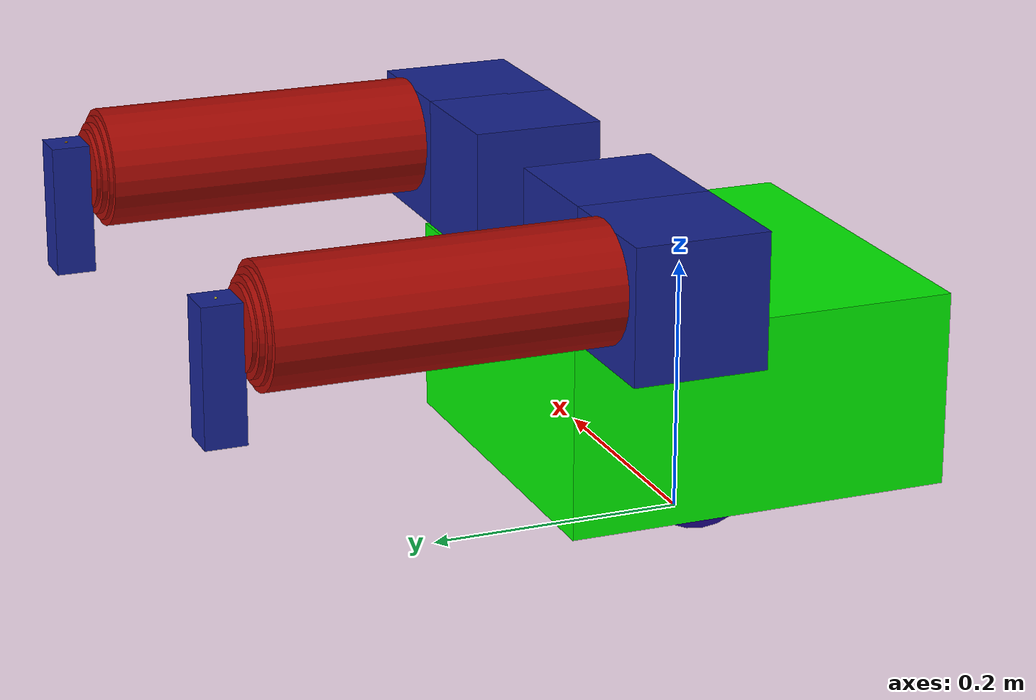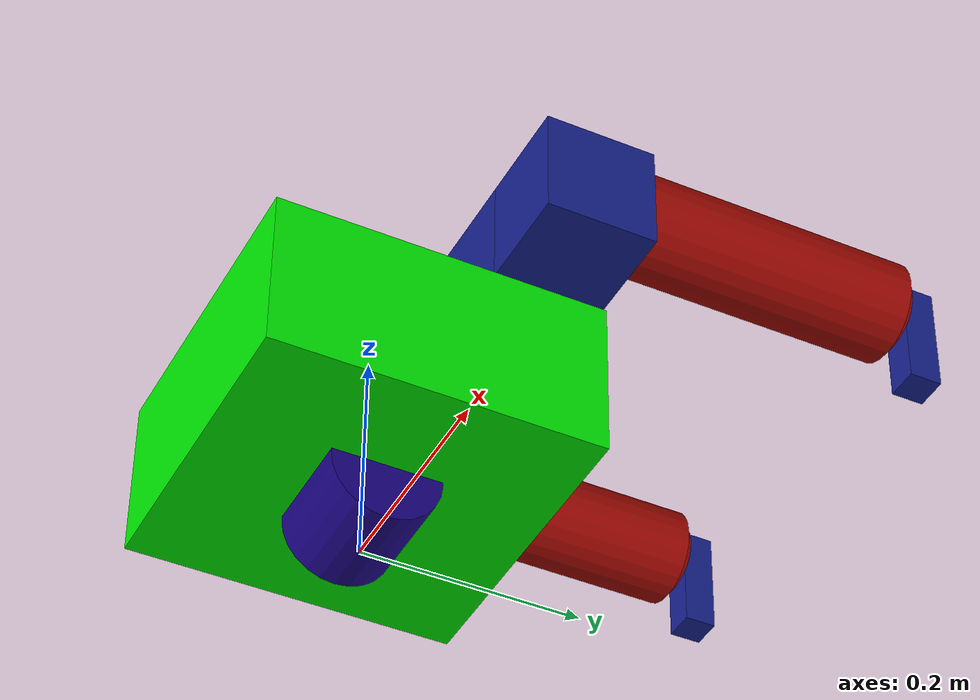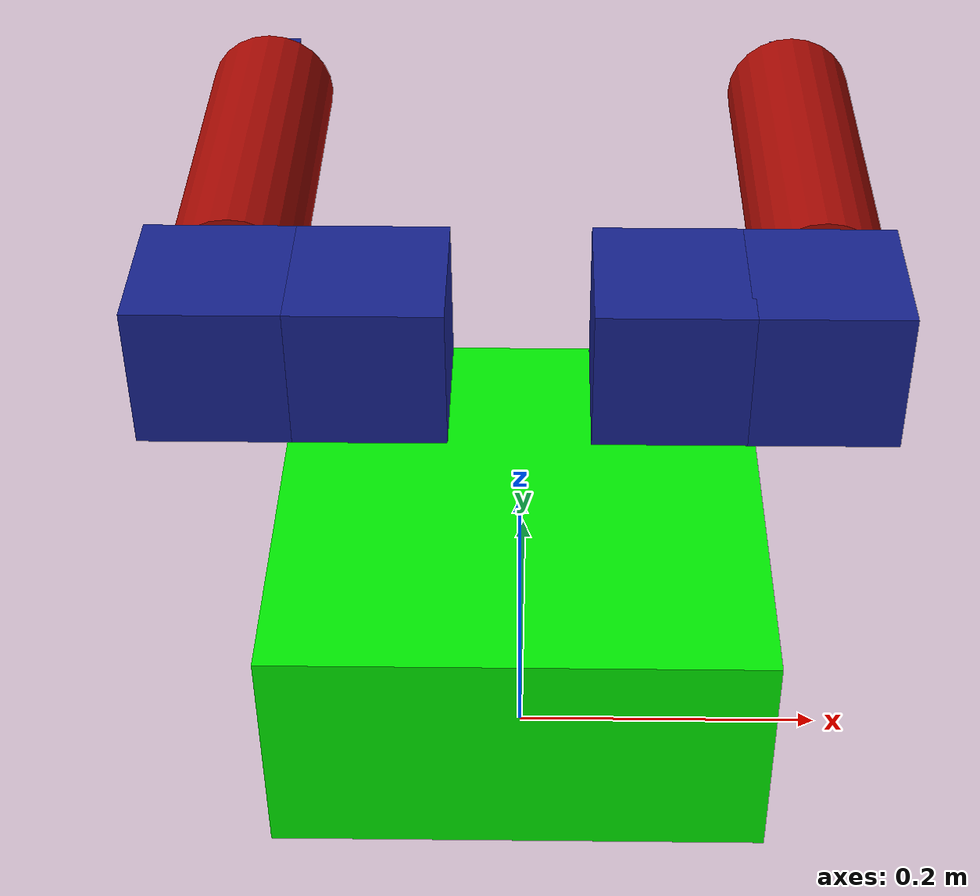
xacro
<?xml version="1.0"?>
<robot xmlns:xacro="http://www.ros.org/wiki/xacro" name="robot">
    <xacro:arg name="initial_positions_file" default="initial_positions.yaml" />

    <!-- Import robot urdf file -->
    <xacro:include filename="$(find robot_description)/urdf/newrobot.urdf" />

    <!-- Import control_xacro -->
    <xacro:include filename="robot.ros2_control.xacro" />

    <xacro:robot_ros2_control name="FakeSystem" initial_positions_file="$(arg initial_positions_file)"/>

</robot>

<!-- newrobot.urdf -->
<robot name="robot">
  <link name="base_link">
    <visual>
      <origin xyz="0 0 0.1291011279735872" rpy="0 0 0" />
      <geometry>
        <box size="0.3 0.3 0.15" />
      </geometry>
      <material name="base_link-material">
        <color rgba="0.006048833020386069 0.9473065367320066 0.0069954101845983935 1" />
      </material>
    </visual>
    <collision>
      <origin xyz="0 0 0.1291011279735872" rpy="0 0 0" />
      <geometry>
        <box size="0.3 0.3 0.15" />
      </geometry>
    </collision>
    <inertial>
      <origin xyz="0 0 0.1291011279735872" rpy="0 0 0" />
      <mass value="1" />
      <inertia ixx="0.16666666666666666" ixy="0" ixz="0" iyy="0.16666666666666666" iyz="0" izz="0.16666666666666666" />
    </inertial>
  </link>
  <link name="cylinder1">
    <visual>
      <origin xyz="0 0 0" rpy="0 0 0" />
      <geometry>
        <cylinder radius="0.05" length="0.1" />
      </geometry>
      <material name="cylinder1-material">
        <color rgba="0.10461648408208657 0.015996293361446288 0.514917665367466 1" />
      </material>
    </visual>
    <collision>
      <origin xyz="0 0 0" rpy="0 0 0" />
      <geometry>
        <cylinder radius="0.05" length="0.1" />
      </geometry>
    </collision>
    <inertial>
      <origin xyz="0 0 0" rpy="0 0 0" />
      <mass value="1" />
      <inertia ixx="0.3333333333333333" ixy="0" ixz="0" iyy="0.5" iyz="0" izz="0.3333333333333333" />
    </inertial>
  </link>
  <joint name="base_link_to_cylinder1" type="fixed">
    <parent link="base_link" />
    <child link="cylinder1" />
    <origin xyz="0 0 0.05122113929521599" rpy="1.5707963267948966 2.220446049250313e-16 1.5707963267948963" />
  </joint>
  <link name="cube3">
    <visual>
      <origin xyz="0 0 0" rpy="0 0 0" />
      <geometry>
        <box size="0.1 0.1 0.1" />
      </geometry>
      <material name="cube3-material">
        <color rgba="0.08865558627723595 0.13563332964548108 0.5647115056965487 1" />
      </material>
    </visual>
    <collision>
      <origin xyz="0 0 0" rpy="0 0 0" />
      <geometry>
        <box size="0.1 0.1 0.1" />
      </geometry>
    </collision>
    <inertial>
      <origin xyz="0 0 0" rpy="0 0 0" />
      <mass value="1" />
      <inertia ixx="0.16666666666666666" ixy="0" ixz="0" iyy="0.16666666666666666" iyz="0" izz="0.16666666666666666" />
    </inertial>
  </link>
  <joint name="base_link_to_cube3" type="revolute">
    <parent link="base_link" />
    <child link="cube3" />
    <origin xyz="0.09490880780581268 0.09748329533451194 0.25430133179925585" rpy="0 0 0" />
    <axis xyz="0 0 1"/>
    <limit effort="1000.0" lower="-1" upper="1" velocity="0.5"/>  </joint>
  <link name="cube3-copy3">
    <visual>
      <origin xyz="0 0 0" rpy="0 0 0" />
      <geometry>
        <box size="0.1 0.1 0.1" />
      </geometry>
      <material name="cube3-copy3-material">
        <color rgba="0.08865558627723595 0.13563332964548108 0.5647115056965487 1" />
      </material>
    </visual>
    <collision>
      <origin xyz="0 0 0" rpy="0 0 0" />
      <geometry>
        <box size="0.1 0.1 0.1" />
      </geometry>
    </collision>
    <inertial>
      <origin xyz="0 0 0" rpy="0 0 0" />
      <mass value="1" />
      <inertia ixx="0.16666666666666666" ixy="0" ixz="0" iyy="0.16666666666666666" iyz="0" izz="0.16666666666666666" />
    </inertial>
  </link>
  <joint name="cube3_to_cube3-copy3" type="revolute">
    <parent link="cube3" />
    <child link="cube3-copy3" />
    <origin xyz="0.0977326868794024 0 0" rpy="0 1.5707963267948966 0" />
    <axis xyz="0 0 1"/>
    <limit effort="1000.0" lower="-1" upper="1" velocity="0.5"/>  </joint>
  <link name="cylinder3-copy5">
    <visual>
      <origin xyz="2.7755575615628914e-17 -3.903127820947816e-17 -1.3877787807814457e-17" rpy="0 0 0" />
      <geometry>
        <cylinder radius="0.045" length="0.25" />
      </geometry>
      <material name="cylinder3-copy5-material">
        <color rgba="0.6583748172725346 0.036889450395083165 0.012983032338510335 1" />
      </material>
    </visual>
    <collision>
      <origin xyz="2.7755575615628914e-17 -3.903127820947816e-17 -1.3877787807814457e-17" rpy="0 0 0" />
      <geometry>
        <cylinder radius="0.045" length="0.25" />
      </geometry>
    </collision>
    <inertial>
      <origin xyz="2.7755575615628914e-17 -3.903127820947816e-17 -1.3877787807814457e-17" rpy="0 0 0" />
      <mass value="1" />
      <inertia ixx="0.3333333333333333" ixy="0" ixz="0" iyy="0.5" iyz="0" izz="0.3333333333333333" />
    </inertial>
  </link>
  <joint name="cube3-copy3_to_cylinder3-copy5" type="fixed">
    <parent link="cube3-copy3" />
    <child link="cylinder3-copy5" />
    <origin xyz="-0.009420597854085 0.17490331386129884 0.004821036014162006" rpy="-2.356194490192345 1.5707963267948966 -0.7853981633974483" />
  </joint>
  <link name="cylinder3">
    <visual>
      <origin xyz="2.7755575615628914e-17 -3.903127820947816e-17 -1.3877787807814457e-17" rpy="0 0 0" />
      <geometry>
        <cylinder radius="0.04" length="0.25" />
      </geometry>
      <material name="cylinder3-material">
        <color rgba="0.6583748172725346 0.036889450395083165 0.012983032338510335 1" />
      </material>
    </visual>
    <collision>
      <origin xyz="2.7755575615628914e-17 -3.903127820947816e-17 -1.3877787807814457e-17" rpy="0 0 0" />
      <geometry>
        <cylinder radius="0.04" length="0.25" />
      </geometry>
    </collision>
    <inertial>
      <origin xyz="2.7755575615628914e-17 -3.903127820947816e-17 -1.3877787807814457e-17" rpy="0 0 0" />
      <mass value="1" />
      <inertia ixx="0.3333333333333333" ixy="0" ixz="0" iyy="0.5" iyz="0" izz="0.3333333333333333" />
    </inertial>
  </link>
  <joint name="cylinder3-copy5_to_cylinder3" type="prismatic">
    <parent link="cylinder3-copy5" />
    <child link="cylinder3" />
    <origin xyz="2.7028641463453882e-17 -4.336808689942018e-19 0.0032738203768583746" rpy="0 0 0" />
    <axis xyz="0 0 1"/>
    <limit effort="1000.0" lower="0" upper="0.2" velocity="0.5"/>  </joint>
  <link name="cylinder3-copy0">
    <visual>
      <origin xyz="0 0 0" rpy="0 0 0" />
      <geometry>
        <cylinder radius="0.035" length="0.25" />
      </geometry>
      <material name="cylinder3-copy0-material">
        <color rgba="0.6583748172725346 0.036889450395083165 0.012983032338510335 1" />
      </material>
    </visual>
    <collision>
      <origin xyz="0 0 0" rpy="0 0 0" />
      <geometry>
        <cylinder radius="0.035" length="0.25" />
      </geometry>
    </collision>
    <inertial>
      <origin xyz="0 0 0" rpy="0 0 0" />
      <mass value="1" />
      <inertia ixx="0.3333333333333333" ixy="0" ixz="0" iyy="0.5" iyz="0" izz="0.3333333333333333" />
    </inertial>
  </link>
  <joint name="cylinder3_to_cylinder3-copy0" type="prismatic">
    <parent link="cylinder3" />
    <child link="cylinder3-copy0" />
    <origin xyz="5.388818844109483e-17 -6.808789643208968e-17 0.004016047725078617" rpy="0 0 0" />
    <axis xyz="0 0 1"/>
    <limit effort="1000.0" lower="0" upper="0.2" velocity="0.5"/>
    <mimic joint="cylinder3-copy5_to_cylinder3" multiplier="1.0" offset="0.0"/>
  </joint>
  <link name="cylinder3-copy1">
    <visual>
      <origin xyz="0 0 0" rpy="0 0 0" />
      <geometry>
        <cylinder radius="0.03" length="0.25" />
      </geometry>
      <material name="cylinder3-copy1-material">
        <color rgba="0.6583748172725346 0.036889450395083165 0.012983032338510335 1" />
      </material>
    </visual>
    <collision>
      <origin xyz="0 0 0" rpy="0 0 0" />
      <geometry>
        <cylinder radius="0.03" length="0.25" />
      </geometry>
    </collision>
    <inertial>
      <origin xyz="0 0 0" rpy="0 0 0" />
      <mass value="1" />
      <inertia ixx="0.3333333333333333" ixy="0" ixz="0" iyy="0.5" iyz="0" izz="0.3333333333333333" />
    </inertial>
  </link>
  <joint name="cylinder3-copy0_to_cylinder3-copy1" type="prismatic">
    <parent link="cylinder3-copy0" />
    <child link="cylinder3-copy1" />
    <origin xyz="-9.301005920151903e-19 -1.235990476633475e-17 0.003018064157115752" rpy="0 0 0" />
    <axis xyz="0 0 1"/>
    <limit effort="1000.0" lower="0" upper="0.2" velocity="0.5"/>
    <mimic joint="cylinder3-copy5_to_cylinder3" multiplier="1.0" offset="0.0"/>
  </joint>
  <link name="cube3-copy2">
    <visual>
      <origin xyz="0 0 0" rpy="0 0 0" />
      <geometry>
        <box size="0.03 0.03 0.1" />
      </geometry>
      <material name="cube3-copy2-material">
        <color rgba="0.08865558627723595 0.13563332964548108 0.5647115056965487 1" />
      </material>
    </visual>
    <collision>
      <origin xyz="0 0 0" rpy="0 0 0" />
      <geometry>
        <box size="0.03 0.03 0.1" />
      </geometry>
    </collision>
    <inertial>
      <origin xyz="0 0 0" rpy="0 0 0" />
      <mass value="1" />
      <inertia ixx="0.16666666666666666" ixy="0" ixz="0" iyy="0.16666666666666666" iyz="0" izz="0.16666666666666666" />
    </inertial>
  </link>
  <joint name="cylinder3-copy1_to_cube3-copy2" type="fixed">
    <parent link="cylinder3-copy1" />
    <child link="cube3-copy2" />
    <origin xyz="-0.0031223829591222113 -0.028689304082221243 0.13915032059303187" rpy="-1.5707963267948963 0 0" />
  </joint>
  <link name="cube3-copy0">
    <visual>
      <origin xyz="0 0 0" rpy="0 0 0" />
      <geometry>
        <box size="0.1 0.1 0.1" />
      </geometry>
      <material name="cube3-copy0-material">
        <color rgba="0.08865558627723595 0.13563332964548108 0.5647115056965487 1" />
      </material>
    </visual>
    <collision>
      <origin xyz="0 0 0" rpy="0 0 0" />
      <geometry>
        <box size="0.1 0.1 0.1" />
      </geometry>
    </collision>
    <inertial>
      <origin xyz="0 0 0" rpy="0 0 0" />
      <mass value="1" />
      <inertia ixx="0.16666666666666666" ixy="0" ixz="0" iyy="0.16666666666666666" iyz="0" izz="0.16666666666666666" />
    </inertial>
  </link>
  <joint name="base_link_to_cube3-copy0" type="revolute">
    <parent link="base_link" />
    <child link="cube3-copy0" />
    <origin xyz="-0.09726916492783255 0.09748329533451194 0.25430133179925585" rpy="0 0 0" />
    <axis xyz="0 0 1"/>
    <limit effort="1000.0" lower="-1" upper="1" velocity="0.5"/>  </joint>
  <link name="cube3-copy4">
    <visual>
      <origin xyz="0 0 0" rpy="0 0 0" />
      <geometry>
        <box size="0.1 0.1 0.1" />
      </geometry>
      <material name="cube3-copy4-material">
        <color rgba="0.08865558627723595 0.13563332964548108 0.5647115056965487 1" />
      </material>
    </visual>
    <collision>
      <origin xyz="0 0 0" rpy="0 0 0" />
      <geometry>
        <box size="0.1 0.1 0.1" />
      </geometry>
    </collision>
    <inertial>
      <origin xyz="0 0 0" rpy="0 0 0" />
      <mass value="1" />
      <inertia ixx="0.16666666666666666" ixy="0" ixz="0" iyy="0.16666666666666666" iyz="0" izz="0.16666666666666666" />
    </inertial>
  </link>
  <joint name="cube3-copy0_to_cube3-copy4" type="revolute">
    <parent link="cube3-copy0" />
    <child link="cube3-copy4" />
    <origin xyz="-0.09985074079374005 0 0" rpy="0 1.5707963267948966 0" />
    <axis xyz="0 0 1"/>
    <limit effort="1000.0" lower="-1" upper="1" velocity="0.5"/>  </joint>
  <link name="cylinder3-copy6">
    <visual>
      <origin xyz="2.7755575615628914e-17 -3.903127820947816e-17 -1.3877787807814457e-17" rpy="0 0 0" />
      <geometry>
        <cylinder radius="0.045" length="0.25" />
      </geometry>
      <material name="cylinder3-copy6-material">
        <color rgba="0.6583748172725346 0.036889450395083165 0.012983032338510335 1" />
      </material>
    </visual>
    <collision>
      <origin xyz="2.7755575615628914e-17 -3.903127820947816e-17 -1.3877787807814457e-17" rpy="0 0 0" />
      <geometry>
        <cylinder radius="0.045" length="0.25" />
      </geometry>
    </collision>
    <inertial>
      <origin xyz="2.7755575615628914e-17 -3.903127820947816e-17 -1.3877787807814457e-17" rpy="0 0 0" />
      <mass value="1" />
      <inertia ixx="0.3333333333333333" ixy="0" ixz="0" iyy="0.5" iyz="0" izz="0.3333333333333333" />
    </inertial>
  </link>
  <joint name="cube3-copy4_to_cylinder3-copy6" type="fixed">
    <parent link="cube3-copy4" />
    <child link="cylinder3-copy6" />
    <origin xyz="-0.009420597854085 0.17490331386129884 0.004821036014162006" rpy="-2.356194490192345 1.5707963267948966 -0.7853981633974483" />
  </joint>
  <link name="cylinder3-copy2">
    <visual>
      <origin xyz="2.7755575615628914e-17 -3.903127820947816e-17 -1.3877787807814457e-17" rpy="0 0 0" />
      <geometry>
        <cylinder radius="0.04" length="0.25" />
      </geometry>
      <material name="cylinder3-copy2-material">
        <color rgba="0.6583748172725346 0.036889450395083165 0.012983032338510335 1" />
      </material>
    </visual>
    <collision>
      <origin xyz="2.7755575615628914e-17 -3.903127820947816e-17 -1.3877787807814457e-17" rpy="0 0 0" />
      <geometry>
        <cylinder radius="0.04" length="0.25" />
      </geometry>
    </collision>
    <inertial>
      <origin xyz="2.7755575615628914e-17 -3.903127820947816e-17 -1.3877787807814457e-17" rpy="0 0 0" />
      <mass value="1" />
      <inertia ixx="0.3333333333333333" ixy="0" ixz="0" iyy="0.5" iyz="0" izz="0.3333333333333333" />
    </inertial>
  </link>
  <joint name="cylinder3-copy6_to_cylinder3-copy2" type="prismatic">
    <parent link="cylinder3-copy6" />
    <child link="cylinder3-copy2" />
    <origin xyz="2.7028641463453882e-17 -4.336808689942018e-19 0.0032738203768583746" rpy="0 0 0" />
    <axis xyz="0 0 1"/>
    <limit effort="1000.0" lower="0" upper="0.2" velocity="0.5"/>  </joint>
  <link name="cylinder3-copy3">
    <visual>
      <origin xyz="0 0 0" rpy="0 0 0" />
      <geometry>
        <cylinder radius="0.035" length="0.25" />
      </geometry>
      <material name="cylinder3-copy3-material">
        <color rgba="0.6583748172725346 0.036889450395083165 0.012983032338510335 1" />
      </material>
    </visual>
    <collision>
      <origin xyz="0 0 0" rpy="0 0 0" />
      <geometry>
        <cylinder radius="0.035" length="0.25" />
      </geometry>
    </collision>
    <inertial>
      <origin xyz="0 0 0" rpy="0 0 0" />
      <mass value="1" />
      <inertia ixx="0.3333333333333333" ixy="0" ixz="0" iyy="0.5" iyz="0" izz="0.3333333333333333" />
    </inertial>
  </link>
  <joint name="cylinder3-copy2_to_cylinder3-copy3" type="prismatic">
    <parent link="cylinder3-copy2" />
    <child link="cylinder3-copy3" />
    <origin xyz="5.388818844109483e-17 -6.808789643208968e-17 0.004016047725078617" rpy="0 0 0" />
    <axis xyz="0 0 1"/>
    <limit effort="1000.0" lower="0" upper="0.2" velocity="0.5"/>
    <mimic joint="cylinder3-copy6_to_cylinder3-copy2" multiplier="1.0" offset="0.0"/>
  </joint>
  <link name="cylinder3-copy4">
    <visual>
      <origin xyz="0 0 0" rpy="0 0 0" />
      <geometry>
        <cylinder radius="0.03" length="0.25" />
      </geometry>
      <material name="cylinder3-copy4-material">
        <color rgba="0.6583748172725346 0.036889450395083165 0.012983032338510335 1" />
      </material>
    </visual>
    <collision>
      <origin xyz="0 0 0" rpy="0 0 0" />
      <geometry>
        <cylinder radius="0.03" length="0.25" />
      </geometry>
    </collision>
    <inertial>
      <origin xyz="0 0 0" rpy="0 0 0" />
      <mass value="1" />
      <inertia ixx="0.3333333333333333" ixy="0" ixz="0" iyy="0.5" iyz="0" izz="0.3333333333333333" />
    </inertial>
  </link>
  <joint name="cylinder3-copy3_to_cylinder3-copy4" type="prismatic">
    <parent link="cylinder3-copy3" />
    <child link="cylinder3-copy4" />
    <origin xyz="-9.301005920151903e-19 -1.235990476633475e-17 0.003018064157115752" rpy="0 0 0" />
    <axis xyz="0 0 1"/>
    <limit effort="1000.0" lower="0" upper="0.2" velocity="0.5"/>
    <mimic joint="cylinder3-copy6_to_cylinder3-copy2" multiplier="1.0" offset="0.0"/>
  </joint>
  <link name="cube3-copy5">
    <visual>
      <origin xyz="0 0 0" rpy="0 0 0" />
      <geometry>
        <box size="0.03 0.03 0.1" />
      </geometry>
      <material name="cube3-copy5-material">
        <color rgba="0.08865558627723595 0.13563332964548108 0.5647115056965487 1" />
      </material>
    </visual>
    <collision>
      <origin xyz="0 0 0" rpy="0 0 0" />
      <geometry>
        <box size="0.03 0.03 0.1" />
      </geometry>
    </collision>
    <inertial>
      <origin xyz="0 0 0" rpy="0 0 0" />
      <mass value="1" />
      <inertia ixx="0.16666666666666666" ixy="0" ixz="0" iyy="0.16666666666666666" iyz="0" izz="0.16666666666666666" />
    </inertial>
  </link>
  <joint name="cylinder3-copy4_to_cube3-copy5" type="fixed">
    <parent link="cylinder3-copy4" />
    <child link="cube3-copy5" />
    <origin xyz="-0.0031223829591222113 -0.028689304082221243 0.13915032059303187" rpy="-1.5707963267948963 0 0" />
  </joint>

  <!-- First end effector modifications -->
  <link name="ee1_roll">
    <visual>
      <origin xyz="0 0 0" rpy="0 0 0"/>
      <geometry>
        <cylinder radius="0.001" length="0.001"/>
      </geometry>
    </visual>
    <inertial>
      <mass value="0.001"/>
      <inertia ixx="0.001" ixy="0" ixz="0" iyy="0.001" iyz="0" izz="0.001"/>
    </inertial>
  </link>

  <joint name="ee1_roll_joint" type="revolute">
    <parent link="cube3-copy2"/>
    <child link="ee1_roll"/>
    <origin xyz="0 0 0.05" rpy="0 0 0"/>
    <axis xyz="1 0 0"/>
    <limit effort="1000.0" lower="-3.14159" upper="3.14159" velocity="0.5"/>
  </joint>

  <link name="ee1_pitch">
    <visual>
      <origin xyz="0 0 0" rpy="0 0 0"/>
      <geometry>
        <cylinder radius="0.001" length="0.001"/>
      </geometry>
    </visual>
    <inertial>
      <mass value="0.001"/>
      <inertia ixx="0.001" ixy="0" ixz="0" iyy="0.001" iyz="0" izz="0.001"/>
    </inertial>
  </link>

  <joint name="ee1_pitch_joint" type="revolute">
    <parent link="ee1_roll"/>
    <child link="ee1_pitch"/>
    <origin xyz="0 0 0" rpy="0 0 0"/>
    <axis xyz="0 1 0"/>
    <limit effort="1000.0" lower="-3.14159" upper="3.14159" velocity="0.5"/>
  </joint>

  <link name="ee1_yaw">
    <visual>
      <origin xyz="0 0 0" rpy="0 0 0"/>
      <geometry>
        <cylinder radius="0.001" length="0.001"/>
      </geometry>
    </visual>
    <inertial>
      <mass value="0.001"/>
      <inertia ixx="0.001" ixy="0" ixz="0" iyy="0.001" iyz="0" izz="0.001"/>
    </inertial>
  </link>

  <joint name="ee1_yaw_joint" type="revolute">
    <parent link="ee1_pitch"/>
    <child link="ee1_yaw"/>
    <origin xyz="0 0 0" rpy="0 0 0"/>
    <axis xyz="0 0 1"/>
    <limit effort="1000.0" lower="-3.14159" upper="3.14159" velocity="0.5"/>
  </joint>

  <!-- Second end effector modifications -->
  <link name="ee2_roll">
    <visual>
      <origin xyz="0 0 0" rpy="0 0 0"/>
      <geometry>
        <cylinder radius="0.001" length="0.001"/>
      </geometry>
    </visual>
    <inertial>
      <mass value="0.001"/>
      <inertia ixx="0.001" ixy="0" ixz="0" iyy="0.001" iyz="0" izz="0.001"/>
    </inertial>
  </link>

  <joint name="ee2_roll_joint" type="revolute">
    <parent link="cube3-copy5"/>
    <child link="ee2_roll"/>
    <origin xyz="0 0 0.05" rpy="0 0 0"/>
    <axis xyz="1 0 0"/>
    <limit effort="1000.0" lower="-3.14159" upper="3.14159" velocity="0.5"/>
  </joint>

  <link name="ee2_pitch">
    <visual>
      <origin xyz="0 0 0" rpy="0 0 0"/>
      <geometry>
        <cylinder radius="0.001" length="0.001"/>
      </geometry>
    </visual>
    <inertial>
      <mass value="0.001"/>
      <inertia ixx="0.001" ixy="0" ixz="0" iyy="0.001" iyz="0" izz="0.001"/>
    </inertial>
  </link>

  <joint name="ee2_pitch_joint" type="revolute">
    <parent link="ee2_roll"/>
    <child link="ee2_pitch"/>
    <origin xyz="0 0 0" rpy="0 0 0"/>
    <axis xyz="0 1 0"/>
    <limit effort="1000.0" lower="-3.14159" upper="3.14159" velocity="0.5"/>
  </joint>

  <link name="ee2_yaw">
    <visual>
      <origin xyz="0 0 0" rpy="0 0 0"/>
      <geometry>
        <cylinder radius="0.001" length="0.001"/>
      </geometry>
    </visual>
    <inertial>
      <mass value="0.001"/>
      <inertia ixx="0.001" ixy="0" ixz="0" iyy="0.001" iyz="0" izz="0.001"/>
    </inertial>
  </link>

  <joint name="ee2_yaw_joint" type="revolute">
    <parent link="ee2_pitch"/>
    <child link="ee2_yaw"/>
    <origin xyz="0 0 0" rpy="0 0 0"/>
    <axis xyz="0 0 1"/>
    <limit effort="1000.0" lower="-3.14159" upper="3.14159" velocity="0.5"/>
  </joint>
</robot>
